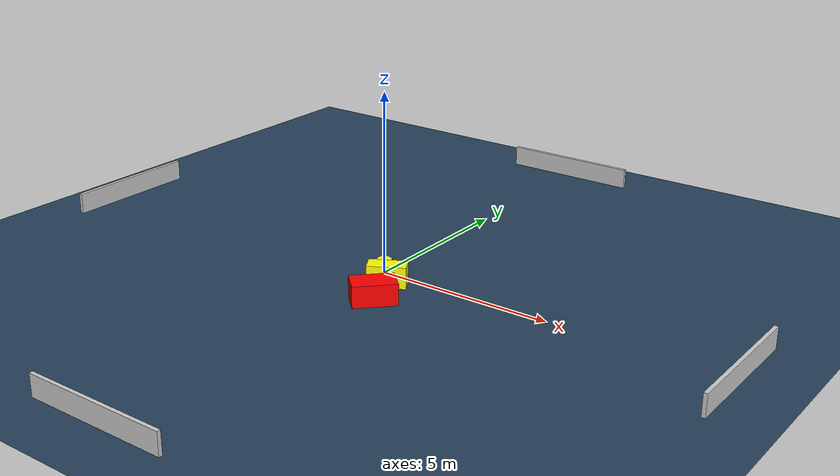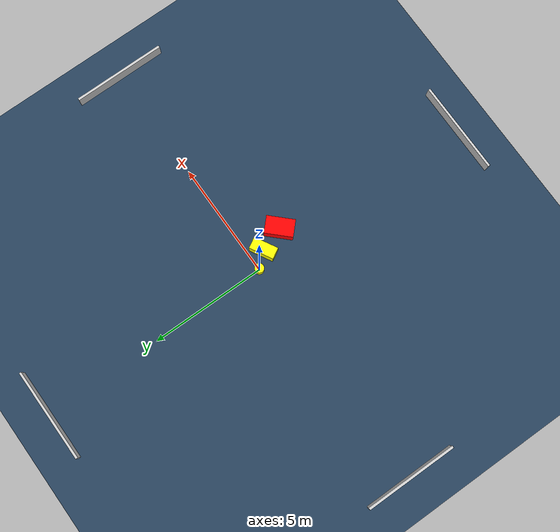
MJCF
<?xml version="1.0" ?>
<mujoco model="generated_environment">
  <option timestep="0.01" integrator="RK4" cone="elliptic"/>
  <default>
    <geom density="1"/>
  </default>
  <asset>
    <texture builtin="gradient" height="3072" name="skybox" rgb1="0.3 0.5 0.7" rgb2="0 0 0" type="skybox" width="512"/>
    <texture builtin="checker" height="300" name="groundplane" rgb1="0.2 0.3 0.4" rgb2="0.1 0.2 0.3" type="2d" width="300"/>
    <material name="groundplane" reflectance="0.2" texrepeat="5 5" texture="groundplane"/>
  </asset>
  <worldbody>
    <light dir="0 0 -1" directional="true" pos="0 0 1.5"/>
    <geom condim="3" friction="0.5 0.005 0.001" material="groundplane" name="floor" pos="0 0 0" size="0 0 0.05" type="plane"/>
    <body name="walls">
      <geom name="wall_1" condim="4" pos="-10.0 0.0 0.3" rgba="0.800000011920929 0.800000011920929 0.800000011920929 1.0" size="0.05 2.0 0.3" type="box"/>
      <geom name="wall_2" condim="4" pos="10.0 0.0 0.3" rgba="0.800000011920929 0.800000011920929 0.800000011920929 1.0" size="0.05 2.0 0.3" type="box"/>
      <geom name="wall_3" condim="4" pos="0.0 -10.0 0.3" rgba="0.800000011920929 0.800000011920929 0.800000011920929 1.0" size="2.0 0.05 0.3" type="box"/>
      <geom name="wall_4" condim="4" pos="0.0 10.0 0.3" rgba="0.800000011920929 0.800000011920929 0.800000011920929 1.0" size="2.0 0.05 0.3" type="box"/>
    </body>
    <body name="robot">
      <joint name="joint_x" type="slide" pos="0 0 0" axis="1 0 0"/>
      <joint name="joint_y" type="slide" pos="0 0 0" axis="0 1 0"/>
      <geom name="robot" type="cylinder" pos="0.0 0.0 0.2" size="0.2 0.2 0.0" mass="5.0" friction="1.0 0.005 0.0001" condim="4" rgba="1.0 1.0 0.0 1.0"/>
    </body>
    <body name="obstacle_1_movable">
      <geom name="obstacle_1_movable" condim="4" pos="0.5387365223158498 -0.5896701396682759 0.3" euler="0 0 299.4018827302707" friction="0.0 0.005 0.001" rgba="1.0 1.0 0.0 1.0" size="0.2491076346661844 0.5259313298902519 0.3" type="box" mass="0.1"/>
      <joint type="free"/>
    </body>
    <body name="obstacle_2_static">
      <geom name="obstacle_2_static" condim="4" pos="0.8848681623023845 -1.6313913720885993 0.3" euler="0 0 225.94249914612413" friction="0.0 0.005 0.001" rgba="1.0 0.0 0.0 1.0" size="0.5971130698588891 0.36796898274921674 0.3" type="box"/>
    </body>
  </worldbody>
  <actuator>
    <motor name="actuator_x" joint="joint_x" gear="1" ctrlrange="-1 1"/>
    <motor name="actuator_y" joint="joint_y" gear="1" ctrlrange="-1 1"/>
  </actuator>
</mujoco>
